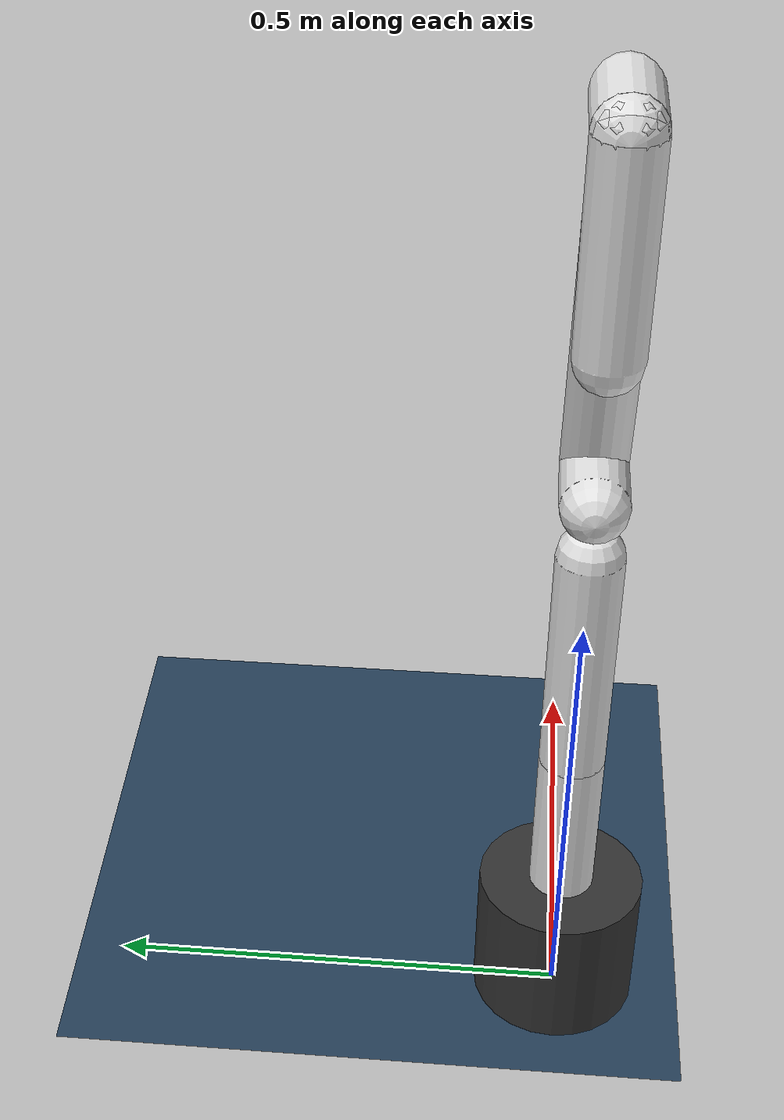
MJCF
<mujoco model="fr3 ideal scene">
  <!-- Include the self-contained FR3 torque model. -->
  <include file="fr3_ideal.xml"/>

  <statistic center="0.2 0 0.4" extent="0.8"/>

  <visual>
    <headlight diffuse="0.6 0.6 0.6" ambient="0.3 0.3 0.3" specular="0 0 0"/>
    <rgba haze="0.15 0.25 0.35 1"/>
    <global azimuth="120" elevation="-20"/>
  </visual>

  <asset>
    <texture type="skybox" builtin="gradient" rgb1="0.3 0.5 0.7" rgb2="0 0 0" width="512" height="3072"/>
    <texture type="2d" name="groundplane" builtin="checker" mark="edge" rgb1="0.2 0.3 0.4" rgb2="0.1 0.2 0.3" markrgb="0.8 0.8 0.8" width="300" height="300"/>
    <material name="groundplane" texture="groundplane" texuniform="true" texrepeat="5 5" reflectance="0.2"/>
  </asset>

  <worldbody>
    <light pos="0 0 1.5" dir="0 0 -1" directional="true"/>
    <geom name="floor" size="0 0 0.05" type="plane" material="groundplane"/>
  </worldbody>
</mujoco>

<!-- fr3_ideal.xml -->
<mujoco model="fr3 ideal torque model">
  <!-- The kinematic and inertial parameters follow the FR3 model used by the original project. -->
  <compiler angle="radian"/>
  <option timestep="0.001" integrator="implicitfast" gravity="0 0 -9.81"/>

  <!-- Default classes keep the included model compact and make every actuator a direct torque input. -->
  <default>
    <default class="fr3">
      <joint damping="0" frictionloss="0" armature="0.195"/>
      <geom type="capsule" size="0.035" rgba="0.88 0.88 0.88 1" contype="0" conaffinity="0"/>
      <site size="0.006" rgba="1 0 0 1"/>
    </default>
  </default>

  <worldbody>
    <!-- The base frame is identical to the MuJoCo world frame. -->
    <body name="base" childclass="fr3">
      <geom type="cylinder" size="0.09 0.08" pos="0 0 0.08" rgba="0.2 0.2 0.2 1"/>
      <body name="fr3_link0">
        <body name="fr3_link1" pos="0 0 0.333">
          <inertial pos="4.128e-07 -0.0181251 -0.0386036" quat="0.998098 -0.0605364 0.00380499 0.0110109" mass="2.92747" diaginertia="0.0239286 0.0227246 0.00610634"/>
          <joint name="fr3_joint1" axis="0 0 1" range="-2.7437 2.7437" limited="true" actuatorfrcrange="-87 87"/>
          <geom fromto="0 0 0 0 0 -0.25"/>

          <body name="fr3_link2" quat="1 -1 0 0">
            <inertial pos="0.00318289 -0.0743222 0.00881461" quat="0.502599 0.584437 -0.465998 0.434366" mass="2.93554" diaginertia="0.0629567 0.0411924 0.0246371"/>
            <joint name="fr3_joint2" axis="0 0 1" range="-1.7837 1.7837" limited="true" actuatorfrcrange="-87 87"/>
            <geom fromto="0 0 0 0 -0.26 0"/>

            <body name="fr3_link3" pos="0 -0.316 0" quat="1 1 0 0">
              <inertial pos="0.0407016 -0.00482006 -0.0289731" quat="0.921025 -0.244161 0.155272 0.260745" mass="2.2449" diaginertia="0.0267409 0.0189869 0.0171587"/>
              <joint name="fr3_joint3" axis="0 0 1" range="-2.9007 2.9007" limited="true" actuatorfrcrange="-87 87"/>
              <geom fromto="0 0 0 0.08 0 0"/>

              <body name="fr3_link4" pos="0.0825 0 0" quat="1 1 0 0">
                <inertial pos="-0.0459101 0.0630493 -0.00851879" quat="0.438018 0.803311 0.00937812 0.403414" mass="2.6156" diaginertia="0.05139 0.0372717 0.0160047"/>
                <joint name="fr3_joint4" axis="0 0 1" range="-3.0421 -0.1518" limited="true" actuatorfrcrange="-87 87"/>
                <geom fromto="0 0 0 -0.08 0.32 0"/>

                <body name="fr3_link5" pos="-0.0825 0.384 0" quat="1 -1 0 0">
                  <inertial pos="-0.00160396 0.0292536 -0.0972966" quat="0.919031 0.125604 0.0751531 -0.366003" mass="2.32712" diaginertia="0.0579335 0.0449144 0.0130634"/>
                  <joint name="fr3_joint5" axis="0 0 1" range="-2.8065 2.8065" limited="true" actuatorfrcrange="-12 12" armature="0.074"/>
                  <geom fromto="0 0 0 0 0 -0.22"/>

                  <body name="fr3_link6" quat="1 1 0 0">
                    <inertial pos="0.0597131 -0.0410295 -0.0101693" quat="0.621301 0.552665 0.510011 0.220081" mass="1.81704" diaginertia="0.0175039 0.0161123 0.00193529"/>
                    <joint name="fr3_joint6" axis="0 0 1" range="0.5445 4.5169" limited="true" actuatorfrcrange="-12 12" armature="0.074"/>
                    <geom fromto="0 0 0 0.088 0 0"/>

                    <body name="fr3_link7" pos="0.088 0 0" quat="1 1 0 0">
                      <inertial pos="0.00452258 0.00862619 -0.0161633" quat="0.727579 0.0978688 -0.24906 0.63168" mass="0.627143" diaginertia="0.000223836 0.000223642 5.64132e-07"/>
                      <joint name="fr3_joint7" axis="0 0 1" range="-3.0159 3.0159" limited="true" actuatorfrcrange="-12 12" armature="0.074"/>
                      <geom fromto="0 0 0 0 0 0.107" size="0.028" rgba="0.2 0.2 0.2 1"/>
                      <!-- This point is the physical flange reference used by the ROS controller. -->
                      <site name="attachment_site" pos="0 0 0.107"/>
                    </body>
                  </body>
                </body>
              </body>
            </body>
          </body>
        </body>
      </body>
    </body>
  </worldbody>

  <!-- Motor controls are direct generalized joint torques. -->
  <actuator>
    <motor name="fr3_joint1_motor" joint="fr3_joint1" ctrllimited="true" ctrlrange="-87 87"/>
    <motor name="fr3_joint2_motor" joint="fr3_joint2" ctrllimited="true" ctrlrange="-87 87"/>
    <motor name="fr3_joint3_motor" joint="fr3_joint3" ctrllimited="true" ctrlrange="-87 87"/>
    <motor name="fr3_joint4_motor" joint="fr3_joint4" ctrllimited="true" ctrlrange="-87 87"/>
    <motor name="fr3_joint5_motor" joint="fr3_joint5" ctrllimited="true" ctrlrange="-12 12"/>
    <motor name="fr3_joint6_motor" joint="fr3_joint6" ctrllimited="true" ctrlrange="-12 12"/>
    <motor name="fr3_joint7_motor" joint="fr3_joint7" ctrllimited="true" ctrlrange="-12 12"/>
  </actuator>

  <keyframe>
    <key name="home" qpos="0 0 0 -1.57079 0 1.57079 -0.7853" ctrl="0 0 0 0 0 0 0"/>
  </keyframe>
</mujoco>
